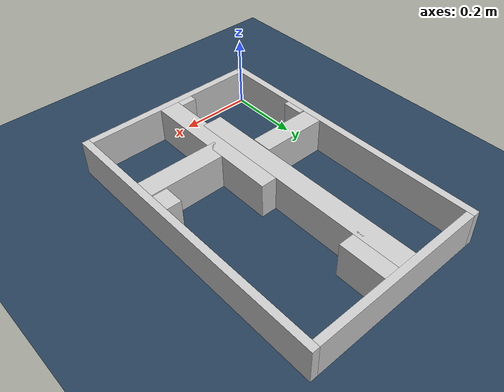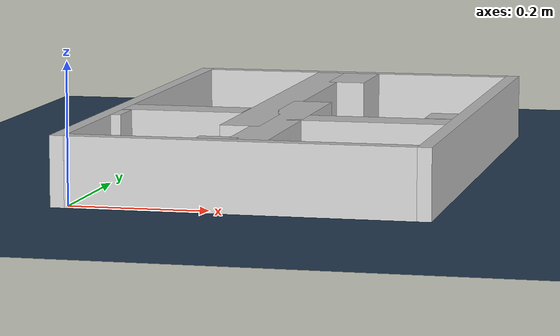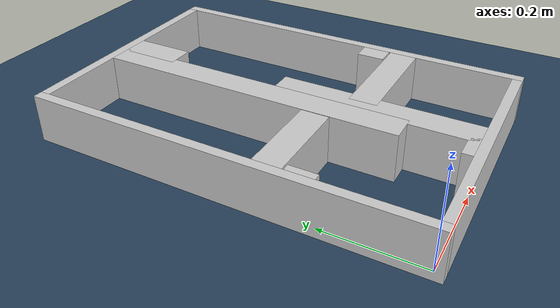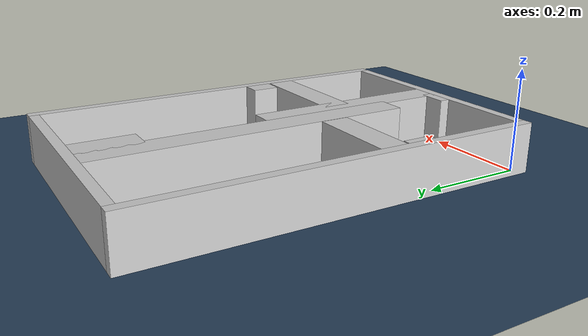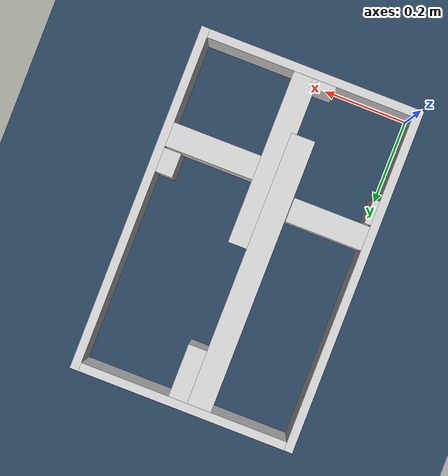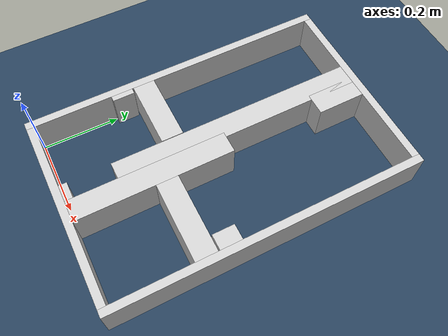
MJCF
<?xml version="1.0" ?>
<mujoco model="generated_real_template">
  <compiler angle="degree"/>
  <option timestep="0.002" integrator="implicitfast" iterations="100" cone="elliptic"/>
  <default>
    <geom density="1"/>
  </default>
  <asset>
    <texture builtin="gradient" height="3072" rgb1="0.3 0.5 0.7" rgb2="0 0 0" type="skybox" width="512"/>
    <texture builtin="checker" height="300" mark="edge" markrgb="0.8 0.8 0.8" name="groundplane" rgb1="0.2 0.3 0.4" rgb2="0.1 0.2 0.3" type="2d" width="300"/>
    <material name="groundplane" reflectance="0.2" texrepeat="5 5" texture="groundplane" texuniform="true"/>
  </asset>
  <worldbody>
    <light dir="0 0 -1" directional="true" pos="0 0 1.5"/>
    <geom name="floor" type="plane" condim="4" friction="0.5 0.005 0.001" material="groundplane" size="0 0 0.05"/>
    <body name="walls">
      <geom name="wall_boundary_left" type="box" condim="4" friction="1.0 0.005 0.0001" rgba="0.8 0.8 0.8 1" pos="-0.010000 0.387500 0.050000" euler="0 0 0.000000" size="0.010000 0.407500 0.050000"/>
      <geom name="wall_boundary_right" type="box" condim="4" friction="1.0 0.005 0.0001" rgba="0.8 0.8 0.8 1" pos="0.500000 0.387500 0.050000" euler="0 0 0.000000" size="0.010000 0.407500 0.050000"/>
      <geom name="wall_boundary_bottom" type="box" condim="4" friction="1.0 0.005 0.0001" rgba="0.8 0.8 0.8 1" pos="0.245000 -0.010000 0.050000" euler="0 0 0.000000" size="0.245000 0.010000 0.050000"/>
      <geom name="wall_boundary_top" type="box" condim="4" friction="1.0 0.005 0.0001" rgba="0.8 0.8 0.8 1" pos="0.245000 0.785000 0.050000" euler="0 0 0.000000" size="0.245000 0.010000 0.050000"/>
      <geom name="wall_inner_1_1" type="box" condim="4" friction="1.0 0.005 0.0001" rgba="0.8 0.8 0.8 1" pos="0.090046 0.290863 0.050000" euler="0 0 0.000000" size="0.090046 0.028500 0.050000"/>
      <geom name="wall_inner_1_2" type="box" condim="4" friction="1.0 0.005 0.0001" rgba="0.8 0.8 0.8 1" pos="0.469880 0.290863 0.050000" euler="0 0 0.000000" size="0.020120 0.028500 0.050000"/>
      <geom name="wall_inner_2_1" type="box" condim="4" friction="1.0 0.005 0.0001" rgba="0.8 0.8 0.8 1" pos="0.209972 0.010594 0.050000" euler="0 0 90.000000" size="0.010594 0.028500 0.050000"/>
      <geom name="wall_inner_2_2" type="box" condim="4" friction="1.0 0.005 0.0001" rgba="0.8 0.8 0.8 1" pos="0.209972 0.452520 0.050000" euler="0 0 90.000000" size="0.322480 0.028500 0.050000"/>
      <geom name="wall_inner_3_1" type="box" condim="4" friction="1.0 0.005 0.0001" rgba="0.8 0.8 0.8 1" pos="0.253868 0.203691 0.050000" euler="0 0 90.000000" size="0.203691 0.028500 0.050000"/>
      <geom name="wall_inner_3_2" type="box" condim="4" friction="1.0 0.005 0.0001" rgba="0.8 0.8 0.8 1" pos="0.253868 0.712648 0.050000" euler="0 0 90.000000" size="0.062352 0.028500 0.050000"/>
      <geom name="wall_inner_4_1" type="box" condim="4" friction="1.0 0.005 0.0001" rgba="0.8 0.8 0.8 1" pos="0.007381 0.230533 0.050000" euler="0 0 0.000000" size="0.007381 0.028500 0.050000"/>
      <geom name="wall_inner_4_2" type="box" condim="4" friction="1.0 0.005 0.0001" rgba="0.8 0.8 0.8 1" pos="0.375294 0.230533 0.050000" euler="0 0 0.000000" size="0.114706 0.028500 0.050000"/>
    </body>
  </worldbody>
</mujoco>
